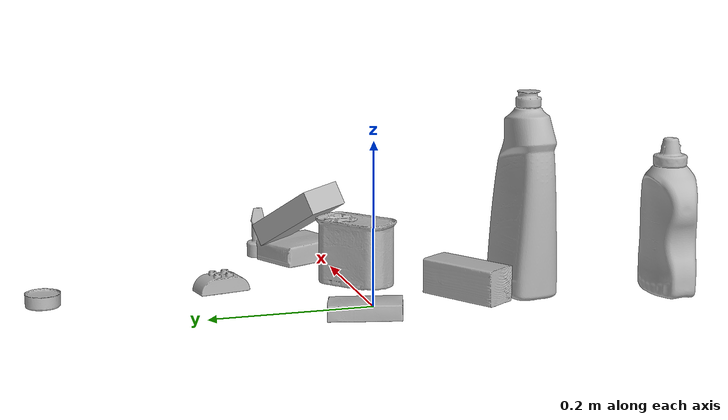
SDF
<sdf version="1.4">
  <world name="default">
    <light name="light1" type="point">
      <pose>0 0 1 0 0 0</pose>
      <diffuse>3 3 3 1</diffuse>
      <specular>3 3 3 1</specular>
    </light>
    <light name="light2" type="point">
      <pose>0 0.5 2 0 0 0</pose>
      <diffuse>1 1 1 1</diffuse>
      <specular>1 1 1 1</specular>
    </light>
    <light name="light3" type="point">
      <pose>0 0.5 2 0 0 0</pose>
      <diffuse>3 3 3 1</diffuse>
      <specular>3 3 3 1</specular>
    </light>
    <scene>
      <ambient>0.7 0.7 0.7</ambient>
    </scene>
    <model name="bottle1">
      <link name="link_bottle1">
        <collision name="default">
          <geometry>
            <mesh>
              <uri>model://bleach_cleanser/collision_meshes/collision.obj</uri>
              <scale>1.0 1.0 1.0</scale>
            </mesh>
          </geometry>
          <surface>
            <friction>
              <ode>
                <mu>0.5</mu>
                <mu2>0.5</mu2>
              </ode>
            </friction>
          <contact>
        <ode>
            <max_vel>0</max_vel>
            <min_depth>0.0001</min_depth>
            <kp>1e8</kp>
        </ode>
    </contact></surface>
        </collision>
        <visual name="default">
          <geometry>
            <mesh>
              <uri>model://bleach_cleanser/visual_meshes/visual.dae</uri>
              <scale>1.0 1.0 1.0</scale>
            </mesh>
          </geometry>
        </visual>
        <inertial>
          <mass>0.5324875712394714</mass>
          <pose>0.00012193183647468686 0.0037838825955986977 -0.024421609938144684 -0.07381669869164166 0.0004201168944593395 -0.0068750469260774934</pose>
          <inertia>
            <ixx>0.0025916947</ixx>
            <iyy>0.0024150796</iyy>
            <izz>0.00044311245</izz>
            <ixy>0</ixy>
            <ixz>0</ixz>
            <iyz>0</iyz>
          </inertia>
        </inertial>
      </link>
      <pose>0.014809587970376015 -0.1936126947402954 0.12578415870666504 -0.00020123962433889035 1.5190069330300185e-05 1.744181896088212</pose>
    </model>
    <model name="bottle2">
      <link name="link_bottle2">
        <collision name="default">
          <geometry>
            <mesh>
              <uri>model://mustard_bottle/collision_meshes/collision.obj</uri>
              <scale>1.0 1.0 1.0</scale>
            </mesh>
          </geometry>
          <surface>
            <friction>
              <ode>
                <mu>0.5</mu>
                <mu2>0.5</mu2>
              </ode>
            </friction>
          <contact>
        <ode>
            <max_vel>0</max_vel>
            <min_depth>0.0001</min_depth>
            <kp>1e8</kp>
        </ode>
    </contact></surface>
        </collision>
        <visual name="default">
          <geometry>
            <mesh>
              <uri>model://mustard_bottle/visual_meshes/visual.dae</uri>
              <scale>1.0 1.0 1.0</scale>
            </mesh>
          </geometry>
        </visual>
        <inertial>
          <mass>0.7762566804885864</mass>
          <pose>0.0005032453336752951 -0.0001564739941386506 -0.01747579127550125 0.0004182320844136383 0.0009465775961192733 0.024853776391442105</pose>
          <inertia>
            <ixx>0.0021555587</ixx>
            <iyy>0.0018913207</iyy>
            <izz>0.00056809856</izz>
            <ixy>0</ixy>
            <ixz>0</ixz>
            <iyz>0</iyz>
          </inertia>
        </inertial>
      </link>
      <pose>-0.031824737787246704 -0.36638280749320984 0.09583087265491486 -0.012050675609455056 -0.004889949905259552 -1.5831951685574197</pose>
    </model>
    <model name="toy1">
      <link name="link_toy1">
        <collision name="default">
          <geometry>
            <mesh>
              <uri>model://e_toy_airplane/collision_meshes/collision.obj</uri>
              <scale>1.0 1.0 1.0</scale>
            </mesh>
          </geometry>
          <surface>
            <friction>
              <ode>
                <mu>0.5</mu>
                <mu2>0.5</mu2>
              </ode>
            </friction>
          <contact>
        <ode>
            <max_vel>0</max_vel>
            <min_depth>0.0001</min_depth>
            <kp>1e8</kp>
        </ode>
    </contact></surface>
        </collision>
        <visual name="default">
          <geometry>
            <mesh>
              <uri>model://e_toy_airplane/visual_meshes/visual.dae</uri>
              <scale>1.0 1.0 1.0</scale>
            </mesh>
          </geometry>
        </visual>
        <inertial>
          <mass>0.01693064346909523</mass>
          <pose>0.00011740485206246376 -2.2482869098894298e-05 -0.011187203228473663 0.005518486263483037 0.009228306153066855 0.15041416456770357</pose>
          <inertia>
            <ixx>5.1674256e-06</ixx>
            <iyy>5.1145657e-06</iyy>
            <izz>1.5530146e-06</izz>
            <ixy>0</ixy>
            <ixz>0</ixz>
            <iyz>0</iyz>
          </inertia>
        </inertial>
      </link>
      <pose>0.28499025106430054 0.07816845923662186 0.03321109712123871 1.2481615331941345e-05 -0.00021263393468374435 2.8560605002692707</pose>
    </model>
    <model name="toy2">
      <link name="link_toy2">
        <collision name="default">
          <geometry>
            <mesh>
              <uri>model://a_lego_duplo/collision_meshes/collision.obj</uri>
              <scale>1.0 1.0 1.0</scale>
            </mesh>
          </geometry>
          <surface>
            <friction>
              <ode>
                <mu>0.5</mu>
                <mu2>0.5</mu2>
              </ode>
            </friction>
          <contact>
        <ode>
            <max_vel>0</max_vel>
            <min_depth>0.0001</min_depth>
            <kp>1e8</kp>
        </ode>
    </contact></surface>
        </collision>
        <visual name="default">
          <geometry>
            <mesh>
              <uri>model://a_lego_duplo/visual_meshes/visual.dae</uri>
              <scale>1.0 1.0 1.0</scale>
            </mesh>
          </geometry>
        </visual>
        <inertial>
          <mass>0.026311658322811127</mass>
          <pose>-0.000113377594971098 0.00018517566786613315 0.0003692609607242048 -0.014117022075399962 -0.00012566465015892618 6.142856652531641e-05</pose>
          <inertia>
            <ixx>3.3733654e-06</ixx>
            <iyy>7.557078e-06</iyy>
            <izz>9.361117e-06</izz>
            <ixy>0</ixy>
            <ixz>0</ixz>
            <iyz>0</iyz>
          </inertia>
        </inertial>
      </link>
      <pose>0.12203903496265411 0.1604388952255249 0.01210690476000309 -0.001093191061597573 -0.0006982020119110758 -1.361598367296519</pose>
    </model>
    <model name="can1">
      <link name="link_can1">
        <collision name="default">
          <geometry>
            <mesh>
              <uri>model://tuna_fish_can/collision_meshes/collision.obj</uri>
              <scale>0.5 0.5 0.5</scale>
            </mesh>
          </geometry>
          <surface>
            <friction>
              <ode>
                <mu>0.5</mu>
                <mu2>0.5</mu2>
              </ode>
            </friction>
          <contact>
        <ode>
            <max_vel>0</max_vel>
            <min_depth>0.0001</min_depth>
            <kp>1e8</kp>
        </ode>
    </contact></surface>
        </collision>
        <visual name="default">
          <geometry>
            <mesh>
              <uri>model://tuna_fish_can/visual_meshes/visual.dae</uri>
              <scale>0.5 0.5 0.5</scale>
            </mesh>
          </geometry>
        </visual>
        <inertial>
          <mass>0.025987863540649414</mass>
          <pose>-2.0361601855256595e-05 -7.256298886204604e-06 -0.0005269025568850338 -0.0017944787689317097 0.0001716279666079131 0.24054509142506303</pose>
          <inertia>
            <ixx>3.5135977e-06</ixx>
            <iyy>3.4989534e-06</iyy>
            <izz>6.0122675e-06</izz>
            <ixy>0</ixy>
            <ixz>0</ixz>
            <iyz>0</iyz>
          </inertia>
        </inertial>
      </link>
      <pose>0.11162151396274567 0.37827321887016296 0.00851999968290329 -4.513205351290731e-09 -2.7126781761556548e-08 2.560118691545304</pose>
    </model>
    <model name="can2">
      <link name="link_can2">
        <collision name="default">
          <geometry>
            <mesh>
              <uri>model://potted_meat_can/collision_meshes/collision.obj</uri>
              <scale>1.0 1.0 1.0</scale>
            </mesh>
          </geometry>
          <surface>
            <friction>
              <ode>
                <mu>0.5</mu>
                <mu2>0.5</mu2>
              </ode>
            </friction>
          <contact>
        <ode>
            <max_vel>0</max_vel>
            <min_depth>0.0001</min_depth>
            <kp>1e8</kp>
        </ode>
    </contact></surface>
        </collision>
        <visual name="default">
          <geometry>
            <mesh>
              <uri>model://potted_meat_can/visual_meshes/visual.dae</uri>
              <scale>1.0 1.0 1.0</scale>
            </mesh>
          </geometry>
        </visual>
        <inertial>
          <mass>0.2732236087322235</mass>
          <pose>0.00022888141393195838 -5.989111741655506e-05 -0.0006367441383190453 -0.028093326615163196 -0.007232604646238421 0.015406262399643026</pose>
          <inertia>
            <ixx>0.0003514736</ixx>
            <iyy>0.00021354685</iyy>
            <izz>0.00025563012</izz>
            <ixy>0</ixy>
            <ixz>0</ixz>
            <iyz>0</iyz>
          </inertia>
        </inertial>
      </link>
      <pose>0.1076560989022255 -0.008794702589511871 0.04212815687060356 -5.283149444314985e-06 3.027336782530012e-05 2.2603536767622385</pose>
    </model>
    <model name="box1">
      <link name="link_box1">
        <collision name="default">
          <geometry>
            <mesh>
              <uri>model://gelatin_box/collision_meshes/collision.obj</uri>
              <scale>1.0 1.0 1.0</scale>
            </mesh>
          </geometry>
          <surface>
            <friction>
              <ode>
                <mu>0.5</mu>
                <mu2>0.5</mu2>
              </ode>
            </friction>
          <contact>
        <ode>
            <max_vel>0</max_vel>
            <min_depth>0.0001</min_depth>
            <kp>1e8</kp>
        </ode>
    </contact></surface>
        </collision>
        <visual name="default">
          <geometry>
            <mesh>
              <uri>model://gelatin_box/visual_meshes/visual.dae</uri>
              <scale>1.0 1.0 1.0</scale>
            </mesh>
          </geometry>
        </visual>
        <inertial>
          <mass>0.14974145591259003</mass>
          <pose>0.0004319618456065655 0.00011156871914863586 -0.0003640321083366871 -0.0010503719798216618 -0.004755819622564704 0.01644055760929568</pose>
          <inertia>
            <ixx>0.00010570526</ixx>
            <iyy>7.550471e-05</iyy>
            <izz>0.00016090693</izz>
            <ixy>0</ixy>
            <ixz>0</ixz>
            <iyz>0</iyz>
          </inertia>
        </inertial>
      </link>
      <pose>0.24968942999839783 0.030841445550322533 0.015433435328304768 -0.00690100479186921 0.01319068419684361 0.42693734483383045</pose>
    </model>
    <model name="box2">
      <link name="link_box2">
        <collision name="default">
          <geometry>
            <mesh>
              <uri>model://sugar_box/collision_meshes/collision.obj</uri>
              <scale>0.5 0.5 0.5</scale>
            </mesh>
          </geometry>
          <surface>
            <friction>
              <ode>
                <mu>0.5</mu>
                <mu2>0.5</mu2>
              </ode>
            </friction>
          <contact>
        <ode>
            <max_vel>0</max_vel>
            <min_depth>0.0001</min_depth>
            <kp>1e8</kp>
        </ode>
    </contact></surface>
        </collision>
        <visual name="default">
          <geometry>
            <mesh>
              <uri>model://sugar_box/visual_meshes/visual.dae</uri>
              <scale>0.5 0.5 0.5</scale>
            </mesh>
          </geometry>
        </visual>
        <inertial>
          <mass>0.07143953442573547</mass>
          <pose>0.0005171863595023751 1.924554817378521e-05 -0.00018182402709499002 -0.0004046263588767038 0.0010506634057764815 0.0026153785560837986</pose>
          <inertia>
            <ixx>1.4880804e-05</ixx>
            <iyy>4.8097805e-05</iyy>
            <izz>5.757883e-05</izz>
            <ixy>0</ixy>
            <ixz>0</ixz>
            <iyz>0</iyz>
          </inertia>
        </inertial>
      </link>
      <pose>-0.04184010624885559 0.022554218769073486 0.011399298906326294 0.0007755176771896546 -0.023432681009274852 -1.8801888806803286</pose>
    </model>
    <model name="box3">
      <link name="link_box3">
        <collision name="default">
          <geometry>
            <mesh>
              <uri>model://jenga/collision_meshes/collision.obj</uri>
              <scale>1.0 1.0 1.0</scale>
            </mesh>
          </geometry>
          <surface>
            <friction>
              <ode>
                <mu>0.5</mu>
                <mu2>0.5</mu2>
              </ode>
            </friction>
          <contact>
        <ode>
            <max_vel>0</max_vel>
            <min_depth>0.0001</min_depth>
            <kp>1e8</kp>
        </ode>
    </contact></surface>
        </collision>
        <visual name="default">
          <geometry>
            <mesh>
              <uri>model://jenga/visual_meshes/visual.dae</uri>
              <scale>1.0 1.0 1.0</scale>
            </mesh>
          </geometry>
        </visual>
        <inertial>
          <mass>0.2564851939678192</mass>
          <pose>-2.502855807051674e-07 -0.00010250010382151231 -4.0923401684267446e-05 0.0 -7.342154049184251e-07 0.0</pose>
          <inertia>
            <ixx>7.097568e-05</ixx>
            <iyy>0.00048092927</iyy>
            <izz>0.0005134329</izz>
            <ixy>0</ixy>
            <ixz>0</ixz>
            <iyz>0</iyz>
          </inertia>
        </inertial>
      </link>
      <pose>0.1859457641839981 0.04745049402117729 0.07624462991952896 0.1862560332962869 -0.46387953716101726 -2.8505528725481564</pose>
    </model>
    <model name="box4">
      <link name="link_box4">
        <collision name="default">
          <geometry>
            <mesh>
              <uri>model://wood_block/collision_meshes/collision.obj</uri>
              <scale>0.5 0.5 0.5</scale>
            </mesh>
          </geometry>
          <surface>
            <friction>
              <ode>
                <mu>0.5</mu>
                <mu2>0.5</mu2>
              </ode>
            </friction>
          <contact>
        <ode>
            <max_vel>0</max_vel>
            <min_depth>0.0001</min_depth>
            <kp>1e8</kp>
        </ode>
    </contact></surface>
        </collision>
        <visual name="default">
          <geometry>
            <mesh>
              <uri>model://wood_block/visual_meshes/visual.dae</uri>
              <scale>0.5 0.5 0.5</scale>
            </mesh>
          </geometry>
        </visual>
        <inertial>
          <mass>0.2543213665485382</mass>
          <pose>-2.906657982748584e-06 -0.000285404734313488 0.00013204291462898254 -0.05220794665887619 -0.0051926956484831775 -0.006861378561045436</pose>
          <inertia>
            <ixx>8.508011e-05</ixx>
            <iyy>0.00026876814</iyy>
            <izz>0.00026776275</izz>
            <ixy>0</ixy>
            <ixz>0</ixz>
            <iyz>0</iyz>
          </inertia>
        </inertial>
      </link>
      <pose>0.009155240841209888 -0.12157080322504044 0.022629257291555405 -0.005208383984267353 0.00571878744389162 -2.5595972119862305</pose>
    </model>
  <physics type="ode">
      <max_contacts>50</max_contacts>
      <ode>
        <solver>
          <type>quick</type>
          <iters>75</iters>
        </solver>
        <constraints>
          <contact_max_correcting_vel>0</contact_max_correcting_vel>
          <contact_surface_layer>0</contact_surface_layer>
        </constraints>
      </ode>
    </physics></world>
</sdf>
